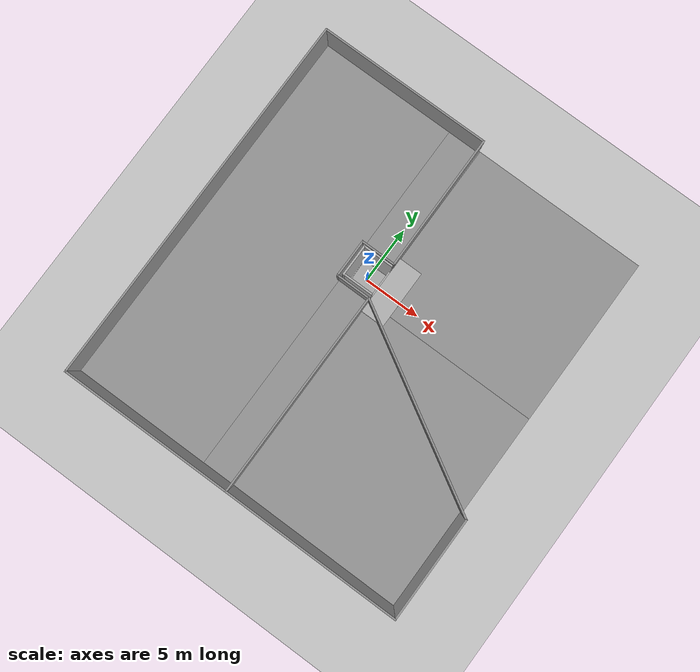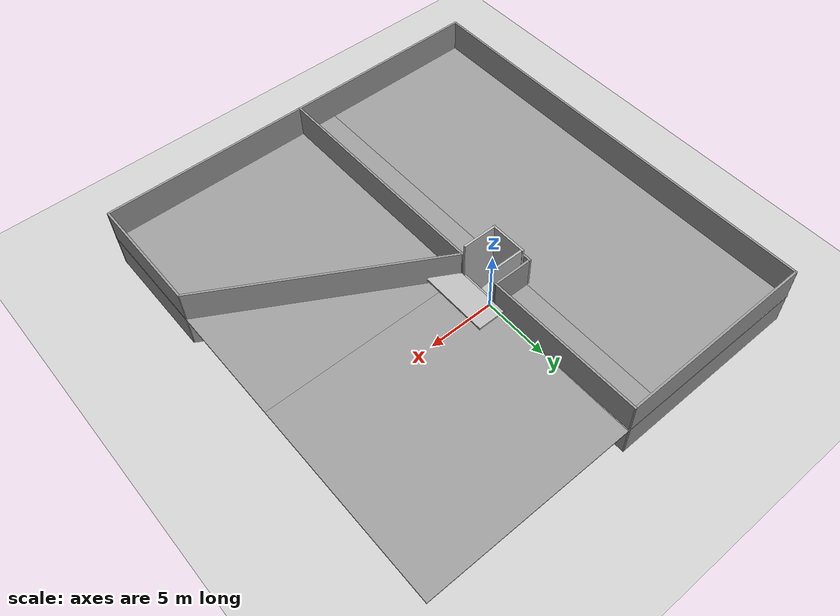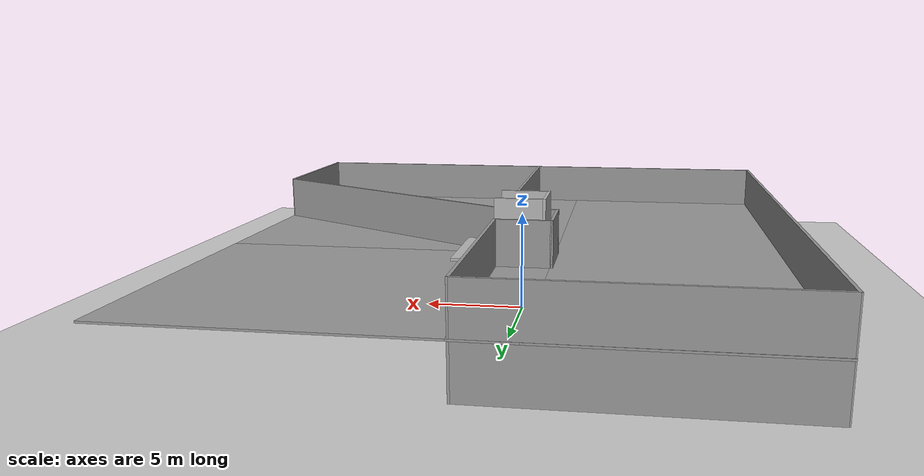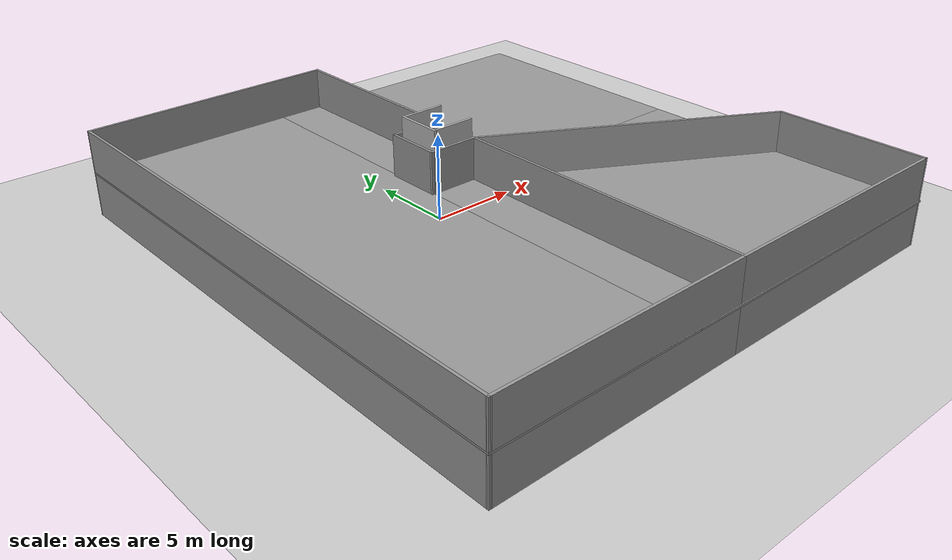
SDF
<sdf version="1.7">
 <world name="default">
  <light name="sun" type="directional">
   <pose>0 0 10 0 -0 0</pose>
   <diffuse>0.8 0.8 0.8 1</diffuse>
   <specular>0.2 0.2 0.2 1</specular>
   <attenuation>
    <range>1000</range>
    <constant>0.9</constant>
    <linear>0.01</linear>
    <quadratic>0.001</quadratic>
   </attenuation>
   <direction>-0.5 0.1 -0.9</direction>
   <spot><inner_angle>0</inner_angle><outer_angle>0</outer_angle><falloff>0</falloff></spot>
  </light>
  <model name="ground_plane">
   <static>1</static>
   <link name="link">
    <collision name="collision">
     <geometry><plane><normal>0 0 1</normal><size>100 100</size></plane></geometry>
     <surface>
      <contact><collide_bitmask>65535</collide_bitmask></contact>
      <friction><ode><mu>100</mu><mu2>50</mu2></ode></friction>
     </surface>
    </collision>
    <visual name="visual">
     <cast_shadows>0</cast_shadows>
     <geometry><plane><normal>0 0 1</normal><size>100 100</size></plane></geometry>
     <material>
      <script><uri>file://media/materials/scripts/gazebo.material</uri><name>Gazebo/Grey</name></script>
     </material>
    </visual>
   </link>
  </model>
  <plugin name="elevator_event_plugin" filename="libSimEventsPlugin.so">
   <region><name>region1</name><volume><min>1.5 -1 0</min><max>2.5 1 1</max></volume></region>
   <region><name>region2</name><volume><min>1.5 -1 3</min><max>2.5 1 4</max></volume></region>
   <event>
    <name>region1_event</name>
    <type>occupied</type>
    <region>region1</region>
    <topic>~/elevator</topic>
    <msg_data>0</msg_data>
   </event>
   <event>
    <name>region2_event</name>
    <type>occupied</type>
    <region>region2</region>
    <topic>~/elevator</topic>
    <msg_data>1</msg_data>
   </event>
  </plugin>
  <model name="elevator">
   <pose>0.047257 0.009556 0.368152 -0.027241 0.144922 0.026896</pose>
   <link name="link">
    <inertial>
     <mass>800</mass>
     <inertia><ixx>1</ixx><ixy>0</ixy><ixz>0</ixz><iyy>1</iyy><iyz>0</iyz><izz>1</izz></inertia>
    </inertial>
    <collision name="floor_collision"><geometry><box><size>2.25 2.25 0.15</size></box></geometry></collision>
    <visual name="floor_visual"><geometry><box><size>2.25 2.25 0.15</size></box></geometry></visual>
    <collision name="wall1_collision">
     <pose>1.0745 0.5725 1.125 0 -0 0</pose>
     <geometry><box><size>0.1 1.15 2.25</size></box></geometry>
    </collision>
    <visual name="wall1_visual">
     <pose>1.0745 0.5725 1.125 0 -0 0</pose>
     <geometry><box><size>0.1 1.15 2.25</size></box></geometry>
     <material><script><name>Gazebo/Red</name><uri>__default__</uri></script></material>
    </visual>
    <collision name="wall2_collision">
     <pose>1.0745 -1.0625 1.125 0 -0 0</pose>
     <geometry><box><size>0.1 0.125 2.25</size></box></geometry>
    </collision>
    <visual name="wall2_visual">
     <pose>1.0745 -1.0625 1.125 0 -0 0</pose>
     <geometry><box><size>0.1 0.125 2.25</size></box></geometry>
     <material><script><name>Gazebo/Red</name><uri>__default__</uri></script></material>
    </visual>
   </link>
   <link name="door">
    <pose>1.0745 -0.5 1.125 0 -0 0</pose>
    <collision name="collision"><geometry><box><size>0.08 1 2.25</size></box></geometry></collision>
    <visual name="visual"><geometry><box><size>0.08 1 2.25</size></box></geometry></visual>
    <inertial>
     <inertia><ixx>1</ixx><ixy>0</ixy><ixz>0</ixz><iyy>1</iyy><iyz>0</iyz><izz>1</izz></inertia>
     <mass>1</mass>
    </inertial>
   </link>
   <joint name="door_joint" type="prismatic">
    <parent>link</parent>
    <child>door</child>
    <axis>
     <xyz>0 1 0</xyz>
     <limit><lower>0</lower><upper>1</upper><effort>10</effort></limit>
     <dynamics>
      <damping>2</damping>
      <spring_reference>0</spring_reference>
      <spring_stiffness>0</spring_stiffness>
     </dynamics>
    </axis>
   </joint>
   <joint name="lift" type="prismatic">
    <parent>world</parent>
    <child>link</child>
    <axis>
     <xyz>0 0 1</xyz>
     <limit><lower>0</lower><upper>10</upper><effort>100000</effort></limit>
     <dynamics>
      <damping>50</damping>
      <spring_reference>0</spring_reference>
      <spring_stiffness>0</spring_stiffness>
     </dynamics>
    </axis>
    <physics>
     <ode><implicit_spring_damper>1</implicit_spring_damper><limit><cfm>0</cfm><erp>0.2</erp></limit></ode>
    </physics>
   </joint>
   <plugin name="elevator_plugin" filename="libElevatorPlugin.so">
    <lift_joint>elevator::lift</lift_joint>
    <door_joint>elevator::door_joint</door_joint>
    <floor_height>3.075</floor_height>
    <door_wait_time>10</door_wait_time>
    <topic>~/elevator</topic>
   </plugin>
  </model>
  <model name="elevator_shaft">
   <static>1</static>
   <link name="link">
    <collision name="shaft_wall1_collision">
     <pose>0 1.25 3 0 -0 0</pose>
     <geometry><box><size>2.5 0.15 6</size></box></geometry>
    </collision>
    <visual name="shaft_wall1_visual">
     <pose>0 1.25 3 0 -0 0</pose>
     <geometry><box><size>2.5 0.15 6</size></box></geometry>
    </visual>
    <collision name="shaft_wall2_collision">
     <pose>0 -1.25 3 0 -0 0</pose>
     <geometry><box><size>2.5 0.15 6</size></box></geometry>
    </collision>
    <visual name="shaft_wall2_visual">
     <pose>0 -1.25 3 0 -0 0</pose>
     <geometry><box><size>2.5 0.15 6</size></box></geometry>
    </visual>
    <collision name="shaft_wall3_collision">
     <pose>-1.25 0 3 0 -0 0</pose>
     <geometry><box><size>0.15 2.7 6</size></box></geometry>
    </collision>
    <visual name="shaft_wall3_visual">
     <pose>-1.25 0 3 0 -0 0</pose>
     <geometry><box><size>0.15 2.7 6</size></box></geometry>
    </visual>
    <collision name="floor0_collision">
     <pose>1.19 0 0.075 0 -0 0</pose>
     <geometry><box><size>0.12 2.5 0.15</size></box></geometry>
    </collision>
    <visual name="floor0_visual">
     <pose>1.19 0 0.075 0 -0 0</pose>
     <geometry><box><size>0.12 2.5 0.15</size></box></geometry>
    </visual>
    <collision name="floor1_collision">
     <pose>1.19 0 3.075 0 -0 0</pose>
     <geometry><box><size>0.12 2.5 0.15</size></box></geometry>
    </collision>
    <visual name="floor1_visual">
     <pose>1.19 0 3.075 0 -0 0</pose>
     <geometry><box><size>0.12 2.5 0.15</size></box></geometry>
    </visual>
   </link>
  </model>
  <model name="floor0">
   <pose>2.25 0 0.075 0 -0 0</pose>
   <static>1</static>
   <link name="link">
    <collision name="floor_collision"><geometry><box><size>2 5 0.15</size></box></geometry></collision>
    <visual name="floor_visual"><geometry><box><size>2 5 0.15</size></box></geometry></visual>
   </link>
  </model>
  <model name="floor1">
   <pose>2.25 0 3.075 0 -0 0</pose>
   <static>1</static>
   <link name="link">
    <collision name="floor_collision"><geometry><box><size>2 5 0.15</size></box></geometry></collision>
    <visual name="floor_visual"><geometry><box><size>2 5 0.15</size></box></geometry></visual>
   </link>
  </model>
  <gravity>0 0 -9.8</gravity>
  <magnetic_field>6e-06 2.3e-05 -4.2e-05</magnetic_field>
  <atmosphere type="adiabatic"/>
  <physics type="ode">
   <max_step_size>0.001</max_step_size>
   <real_time_factor>1</real_time_factor>
   <real_time_update_rate>1000</real_time_update_rate>
  </physics>
  <scene><ambient>0.4 0.4 0.4 1</ambient><background>0.7 0.7 0.7 1</background><shadows>1</shadows></scene>
  <spherical_coordinates>
   <surface_model>EARTH_WGS84</surface_model>
   <latitude_deg>0</latitude_deg>
   <longitude_deg>0</longitude_deg>
   <elevation>0</elevation>
   <heading_deg>0</heading_deg>
  </spherical_coordinates>
  <model name="Untitled">
   <pose>1.43871 -2.96959 0 0 -0 0</pose>
   <link name="Floor_2">
    <pose>0 -3.2e-05 2.5 0 -0 0</pose>
    <visual name="Floor_2_Visual_0">
     <pose>-8.97033 0 0.05 0 -0 0</pose>
     <geometry><box><size>11.9096 32.0396 0.1</size></box></geometry>
     <material>
      <script><uri>file://media/materials/scripts/gazebo.material</uri><name>Gazebo/Grey</name></script>
      <ambient>1 1 1 1</ambient>
     </material>
     <meta><layer>1</layer></meta>
    </visual>
    <collision name="Floor_2_Collision_0">
     <geometry><box><size>11.9096 32.0396 0.1</size></box></geometry>
     <pose>-8.97033 0 0.05 0 -0 0</pose>
    </collision>
    <visual name="Floor_2_Visual_1">
     <pose>5.9548 -7.28975 0.05 0 -0 0</pose>
     <geometry><box><size>17.9407 17.4601 0.1</size></box></geometry>
     <material>
      <script><uri>file://media/materials/scripts/gazebo.material</uri><name>Gazebo/Grey</name></script>
      <ambient>1 1 1 1</ambient>
     </material>
     <meta><layer>1</layer></meta>
    </visual>
    <collision name="Floor_2_Collision_1">
     <geometry><box><size>17.9407 17.4601 0.1</size></box></geometry>
     <pose>5.9548 -7.28975 0.05 0 -0 0</pose>
    </collision>
    <visual name="Floor_2_Visual_2">
     <pose>7.38123 8.73004 0.05 0 -0 0</pose>
     <geometry><box><size>15.0878 14.5795 0.1</size></box></geometry>
     <material>
      <script><uri>file://media/materials/scripts/gazebo.material</uri><name>Gazebo/Grey</name></script>
      <ambient>1 1 1 1</ambient>
     </material>
     <meta><layer>1</layer></meta>
    </visual>
    <collision name="Floor_2_Collision_2">
     <geometry><box><size>15.0878 14.5795 0.1</size></box></geometry>
     <pose>7.38123 8.73004 0.05 0 -0 0</pose>
    </collision>
    <visual name="Floor_2_Visual_3">
     <pose>-1.5891 10.2445 0.05 0 -0 0</pose>
     <geometry><box><size>2.85287 11.5506 0.1</size></box></geometry>
     <material>
      <script><uri>file://media/materials/scripts/gazebo.material</uri><name>Gazebo/Grey</name></script>
      <ambient>1 1 1 1</ambient>
     </material>
     <meta><layer>1</layer></meta>
    </visual>
    <collision name="Floor_2_Collision_3">
     <geometry><box><size>2.85287 11.5506 0.1</size></box></geometry>
     <pose>-1.5891 10.2445 0.05 0 -0 0</pose>
    </collision>
   </link>
   <link name="Wall_0">
    <collision name="Wall_0_Collision">
     <geometry><box><size>17.5 0.15 2.5</size></box></geometry>
     <pose>0 0 1.25 0 -0 0</pose>
    </collision>
    <visual name="Wall_0_Visual">
     <pose>0 0 1.25 0 -0 0</pose>
     <geometry><box><size>17.5 0.15 2.5</size></box></geometry>
     <material>
      <script><uri>file://media/materials/scripts/gazebo.material</uri><name>Gazebo/Grey</name></script>
      <ambient>1 1 1 1</ambient>
     </material>
     <meta><layer>0</layer></meta>
    </visual>
    <pose>-0.249871 -7.21956 0 0 -0 -1.5708</pose>
   </link>
   <link name="Wall_12">
    <collision name="Wall_12_Collision">
     <geometry><box><size>14.6899 0.15 2.5</size></box></geometry>
     <pose>0 0 1.25 0 -0 0</pose>
    </collision>
    <visual name="Wall_12_Visual">
     <pose>0 0 1.25 0 -0 0</pose>
     <geometry><box><size>14.6899 0.15 2.5</size></box></geometry>
     <material>
      <script><uri>file://media/materials/scripts/gazebo.material</uri><name>Gazebo/Grey</name></script>
      <ambient>1 1 1 1</ambient>
     </material>
     <meta><layer>0</layer></meta>
    </visual>
    <pose>-7.57994 15.9249 0 0 -0 -3.13892</pose>
   </link>
   <link name="Wall_13">
    <collision name="Wall_13_Collision">
     <geometry><box><size>32 0.15 2.5</size></box></geometry>
     <pose>0 0 1.25 0 -0 0</pose>
    </collision>
    <visual name="Wall_13_Visual">
     <pose>0 0 1.25 0 -0 0</pose>
     <geometry><box><size>32 0.15 2.5</size></box></geometry>
     <material>
      <script><uri>file://media/materials/scripts/gazebo.material</uri><name>Gazebo/Grey</name></script>
      <ambient>1 1 1 1</ambient>
     </material>
     <meta><layer>0</layer></meta>
    </visual>
    <pose>-14.8499 -0.01956 0 0 -0 -1.5708</pose>
   </link>
   <link name="Wall_14">
    <collision name="Wall_14_Collision">
     <geometry><box><size>14.7501 0.15 2.5</size></box></geometry>
     <pose>0 0 1.25 0 -0 0</pose>
    </collision>
    <visual name="Wall_14_Visual">
     <pose>0 0 1.25 0 -0 0</pose>
     <geometry><box><size>14.7501 0.15 2.5</size></box></geometry>
     <material>
      <script><uri>file://media/materials/scripts/gazebo.material</uri><name>Gazebo/Grey</name></script>
      <ambient>1 1 1 1</ambient>
     </material>
     <meta><layer>0</layer></meta>
    </visual>
    <pose>-7.54987 -15.9196 0 0 -0 0.003425</pose>
   </link>
   <link name="Wall_15">
    <collision name="Wall_15_Collision">
     <geometry><box><size>15.25 0.15 2.5</size></box></geometry>
     <pose>0 0 1.25 0 -0 0</pose>
    </collision>
    <visual name="Wall_15_Visual">
     <pose>0 0 1.25 0 -0 0</pose>
     <geometry><box><size>15.25 0.15 2.5</size></box></geometry>
     <material>
      <script><uri>file://media/materials/scripts/gazebo.material</uri><name>Gazebo/Grey</name></script>
      <ambient>1 1 1 1</ambient>
     </material>
     <meta><layer>0</layer></meta>
    </visual>
    <pose>7.30013 -15.8946 0 0 -0 0</pose>
   </link>
   <link name="Wall_16">
    <collision name="Wall_16_Collision">
     <geometry><box><size>8.75 0.15 2.5</size></box></geometry>
     <pose>0 0 1.25 0 -0 0</pose>
    </collision>
    <visual name="Wall_16_Visual">
     <pose>0 0 1.25 0 -0 0</pose>
     <geometry><box><size>8.75 0.15 2.5</size></box></geometry>
     <material>
      <script><uri>file://media/materials/scripts/gazebo.material</uri><name>Gazebo/Grey</name></script>
      <ambient>1 1 1 1</ambient>
     </material>
     <meta><layer>0</layer></meta>
    </visual>
    <pose>14.8501 -11.5946 0 0 -0 1.5708</pose>
   </link>
   <link name="Wall_20">
    <collision name="Wall_20_Collision">
     <geometry><box><size>17.5 0.15 2.5</size></box></geometry>
     <pose>0 0 1.25 0 -0 0</pose>
    </collision>
    <visual name="Wall_20_Visual">
     <pose>0 0 1.25 0 -0 0</pose>
     <geometry><box><size>17.5 0.15 2.5</size></box></geometry>
     <material>
      <script><uri>file://media/materials/scripts/gazebo.material</uri><name>Gazebo/Grey</name></script>
      <ambient>1 1 1 1</ambient>
     </material>
     <meta><layer>0</layer></meta>
    </visual>
    <pose>7.2629 -2.88206 0 0 -0 -0.523599</pose>
   </link>
   <link name="Wall_3">
    <collision name="Wall_3_Collision">
     <geometry><box><size>3 0.15 2.5</size></box></geometry>
     <pose>0 0 1.25 0 -0 0</pose>
    </collision>
    <visual name="Wall_3_Visual">
     <pose>0 0 1.25 0 -0 0</pose>
     <geometry><box><size>3 0.15 2.5</size></box></geometry>
     <material>
      <script><uri>file://media/materials/scripts/gazebo.material</uri><name>Gazebo/Grey</name></script>
      <ambient>1 1 1 1</ambient>
     </material>
     <meta><layer>0</layer></meta>
    </visual>
    <pose>-1.67487 1.45544 0 0 -0 3.14159</pose>
   </link>
   <link name="Wall_45">
    <collision name="Wall_45_Collision">
     <geometry><box><size>17.5 0.15 2.5</size></box></geometry>
     <pose>0 0 1.25 0 -0 0</pose>
    </collision>
    <visual name="Wall_45_Visual">
     <pose>0 0 1.25 0 -0 0</pose>
     <geometry><box><size>17.5 0.15 2.5</size></box></geometry>
     <material>
      <script><uri>file://media/materials/scripts/gazebo.material</uri><name>Gazebo/Grey</name></script>
      <ambient>1 1 1 1</ambient>
     </material>
     <meta><layer>1</layer></meta>
    </visual>
    <pose>-0.249871 -7.21956 2.5 0 -0 -1.5708</pose>
   </link>
   <link name="Wall_46">
    <collision name="Wall_46_Collision">
     <geometry><box><size>3 0.15 2.5</size></box></geometry>
     <pose>0 0 1.25 0 -0 0</pose>
    </collision>
    <visual name="Wall_46_Visual">
     <pose>0 0 1.25 0 -0 0</pose>
     <geometry><box><size>3 0.15 2.5</size></box></geometry>
     <material>
      <script><uri>file://media/materials/scripts/gazebo.material</uri><name>Gazebo/Grey</name></script>
      <ambient>1 1 1 1</ambient>
     </material>
     <meta><layer>1</layer></meta>
    </visual>
    <pose>-1.67487 1.45544 2.5 0 -0 3.14159</pose>
   </link>
   <link name="Wall_47">
    <collision name="Wall_47_Collision">
     <geometry><box><size>3.25 0.15 2.5</size></box></geometry>
     <pose>0 0 1.25 0 -0 0</pose>
    </collision>
    <visual name="Wall_47_Visual">
     <pose>0 0 1.25 0 -0 0</pose>
     <geometry><box><size>3.25 0.15 2.5</size></box></geometry>
     <material>
      <script><uri>file://media/materials/scripts/gazebo.material</uri><name>Gazebo/Grey</name></script>
      <ambient>1 1 1 1</ambient>
     </material>
     <meta><layer>1</layer></meta>
    </visual>
    <pose>-3.09987 3.00544 2.5 0 -0 1.5708</pose>
   </link>
   <link name="Wall_48">
    <collision name="Wall_48_Collision">
     <geometry><box><size>3 0.15 2.5</size></box></geometry>
     <pose>0 0 1.25 0 -0 0</pose>
    </collision>
    <visual name="Wall_48_Visual">
     <pose>0 0 1.25 0 -0 0</pose>
     <geometry><box><size>3 0.15 2.5</size></box></geometry>
     <material>
      <script><uri>file://media/materials/scripts/gazebo.material</uri><name>Gazebo/Grey</name></script>
      <ambient>1 1 1 1</ambient>
     </material>
     <meta><layer>1</layer></meta>
    </visual>
    <pose>-1.67487 4.55544 2.5 0 -0 0</pose>
   </link>
   <link name="Wall_49">
    <collision name="Wall_49_Collision">
     <geometry><box><size>11.5391 0.15 2.5</size></box></geometry>
     <pose>0 0 1.25 0 -0 0</pose>
    </collision>
    <visual name="Wall_49_Visual">
     <pose>0 0 1.25 0 -0 0</pose>
     <geometry><box><size>11.5391 0.15 2.5</size></box></geometry>
     <material>
      <script><uri>file://media/materials/scripts/gazebo.material</uri><name>Gazebo/Grey</name></script>
      <ambient>1 1 1 1</ambient>
     </material>
     <meta><layer>1</layer></meta>
    </visual>
    <pose>-0.279943 10.2499 2.5 0 -0 1.57608</pose>
   </link>
   <link name="Wall_5">
    <collision name="Wall_5_Collision">
     <geometry><box><size>3.25 0.15 2.5</size></box></geometry>
     <pose>0 0 1.25 0 -0 0</pose>
    </collision>
    <visual name="Wall_5_Visual">
     <pose>0 0 1.25 0 -0 0</pose>
     <geometry><box><size>3.25 0.15 2.5</size></box></geometry>
     <material>
      <script><uri>file://media/materials/scripts/gazebo.material</uri><name>Gazebo/Grey</name></script>
      <ambient>1 1 1 1</ambient>
     </material>
     <meta><layer>0</layer></meta>
    </visual>
    <pose>-3.09987 3.00544 0 0 -0 1.5708</pose>
   </link>
   <link name="Wall_50">
    <collision name="Wall_50_Collision">
     <geometry><box><size>14.6899 0.15 2.5</size></box></geometry>
     <pose>0 0 1.25 0 -0 0</pose>
    </collision>
    <visual name="Wall_50_Visual">
     <pose>0 0 1.25 0 -0 0</pose>
     <geometry><box><size>14.6899 0.15 2.5</size></box></geometry>
     <material>
      <script><uri>file://media/materials/scripts/gazebo.material</uri><name>Gazebo/Grey</name></script>
      <ambient>1 1 1 1</ambient>
     </material>
     <meta><layer>1</layer></meta>
    </visual>
    <pose>-7.57994 15.9249 2.5 0 -0 -3.13892</pose>
   </link>
   <link name="Wall_51">
    <collision name="Wall_51_Collision">
     <geometry><box><size>32 0.15 2.5</size></box></geometry>
     <pose>0 0 1.25 0 -0 0</pose>
    </collision>
    <visual name="Wall_51_Visual">
     <pose>0 0 1.25 0 -0 0</pose>
     <geometry><box><size>32 0.15 2.5</size></box></geometry>
     <material>
      <script><uri>file://media/materials/scripts/gazebo.material</uri><name>Gazebo/Grey</name></script>
      <ambient>1 1 1 1</ambient>
     </material>
     <meta><layer>1</layer></meta>
    </visual>
    <pose>-14.8499 -0.01956 2.5 0 -0 -1.5708</pose>
   </link>
   <link name="Wall_52">
    <collision name="Wall_52_Collision">
     <geometry><box><size>14.7501 0.15 2.5</size></box></geometry>
     <pose>0 0 1.25 0 -0 0</pose>
    </collision>
    <visual name="Wall_52_Visual">
     <pose>0 0 1.25 0 -0 0</pose>
     <geometry><box><size>14.7501 0.15 2.5</size></box></geometry>
     <material>
      <script><uri>file://media/materials/scripts/gazebo.material</uri><name>Gazebo/Grey</name></script>
      <ambient>1 1 1 1</ambient>
     </material>
     <meta><layer>1</layer></meta>
    </visual>
    <pose>-7.54987 -15.9196 2.5 0 -0 0.003425</pose>
   </link>
   <link name="Wall_53">
    <collision name="Wall_53_Collision">
     <geometry><box><size>15.25 0.15 2.5</size></box></geometry>
     <pose>0 0 1.25 0 -0 0</pose>
    </collision>
    <visual name="Wall_53_Visual">
     <pose>0 0 1.25 0 -0 0</pose>
     <geometry><box><size>15.25 0.15 2.5</size></box></geometry>
     <material>
      <script><uri>file://media/materials/scripts/gazebo.material</uri><name>Gazebo/Grey</name></script>
      <ambient>1 1 1 1</ambient>
     </material>
     <meta><layer>1</layer></meta>
    </visual>
    <pose>7.30013 -15.8946 2.5 0 -0 0</pose>
   </link>
   <link name="Wall_54">
    <collision name="Wall_54_Collision">
     <geometry><box><size>8.75 0.15 2.5</size></box></geometry>
     <pose>0 0 1.25 0 -0 0</pose>
    </collision>
    <visual name="Wall_54_Visual">
     <pose>0 0 1.25 0 -0 0</pose>
     <geometry><box><size>8.75 0.15 2.5</size></box></geometry>
     <material>
      <script><uri>file://media/materials/scripts/gazebo.material</uri><name>Gazebo/Grey</name></script>
      <ambient>1 1 1 1</ambient>
     </material>
     <meta><layer>1</layer></meta>
    </visual>
    <pose>14.8501 -11.5946 2.5 0 -0 1.5708</pose>
   </link>
   <link name="Wall_55">
    <collision name="Wall_55_Collision">
     <geometry><box><size>17.5 0.15 2.5</size></box></geometry>
     <pose>0 0 1.25 0 -0 0</pose>
    </collision>
    <visual name="Wall_55_Visual">
     <pose>0 0 1.25 0 -0 0</pose>
     <geometry><box><size>17.5 0.15 2.5</size></box></geometry>
     <material>
      <script><uri>file://media/materials/scripts/gazebo.material</uri><name>Gazebo/Grey</name></script>
      <ambient>1 1 1 1</ambient>
     </material>
     <meta><layer>1</layer></meta>
    </visual>
    <pose>7.2629 -2.88206 2.5 0 -0 -0.523599</pose>
   </link>
   <link name="Wall_7">
    <collision name="Wall_7_Collision">
     <geometry><box><size>3 0.15 2.5</size></box></geometry>
     <pose>0 0 1.25 0 -0 0</pose>
    </collision>
    <visual name="Wall_7_Visual">
     <pose>0 0 1.25 0 -0 0</pose>
     <geometry><box><size>3 0.15 2.5</size></box></geometry>
     <material>
      <script><uri>file://media/materials/scripts/gazebo.material</uri><name>Gazebo/Grey</name></script>
      <ambient>1 1 1 1</ambient>
     </material>
     <meta><layer>0</layer></meta>
    </visual>
    <pose>-1.67487 4.55544 0 0 -0 0</pose>
   </link>
   <link name="Wall_9">
    <collision name="Wall_9_Collision">
     <geometry><box><size>11.5392 0.15 2.5</size></box></geometry>
     <pose>0 0 1.25 0 -0 0</pose>
    </collision>
    <visual name="Wall_9_Visual">
     <pose>0 0 1.25 0 -0 0</pose>
     <geometry><box><size>11.5392 0.15 2.5</size></box></geometry>
     <material>
      <script><uri>file://media/materials/scripts/gazebo.material</uri><name>Gazebo/Grey</name></script>
      <ambient>1 1 1 1</ambient>
     </material>
     <meta><layer>0</layer></meta>
    </visual>
    <pose>-0.279943 10.2499 0 0 -0 1.57608</pose>
   </link>
   <static>1</static>
  </model>
 </world>
</sdf>
